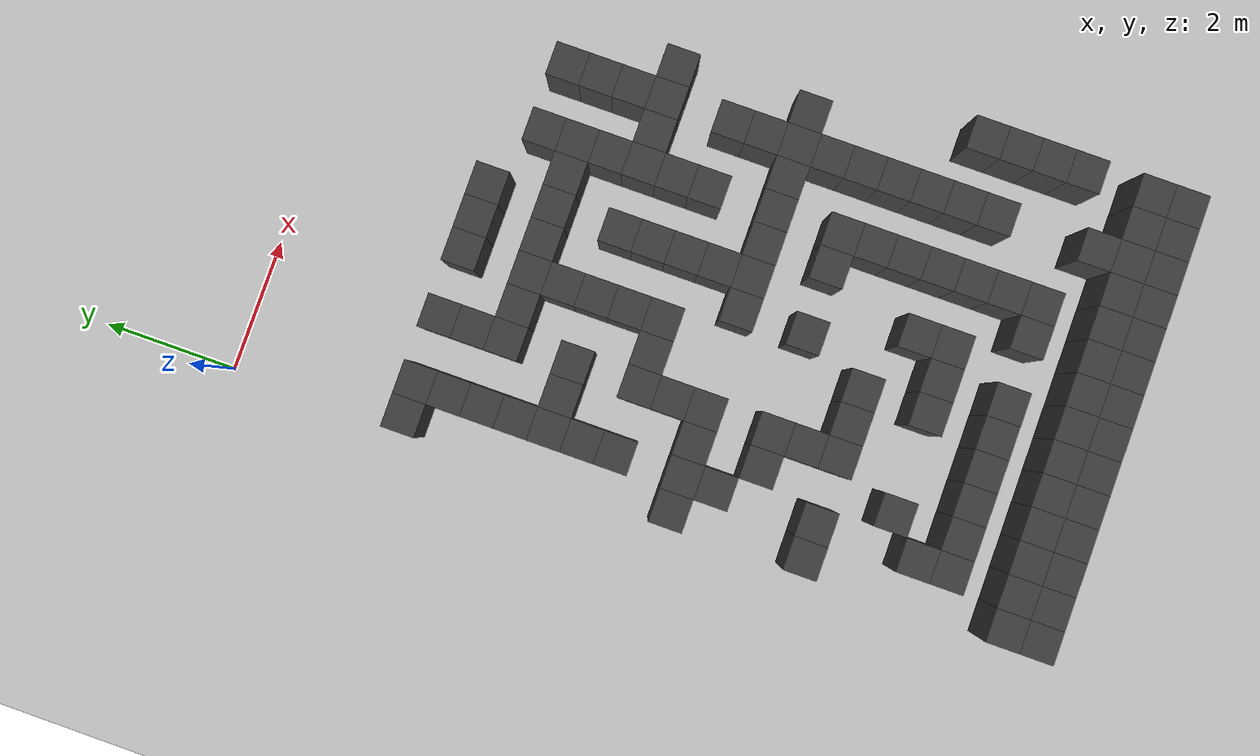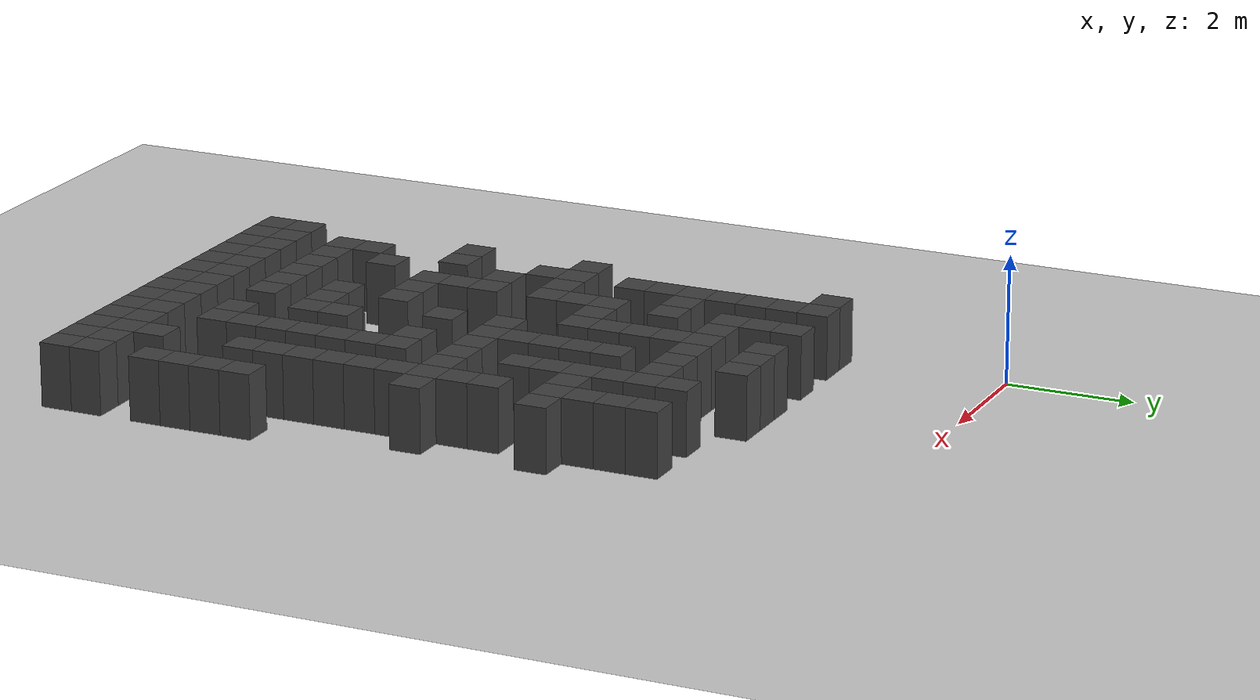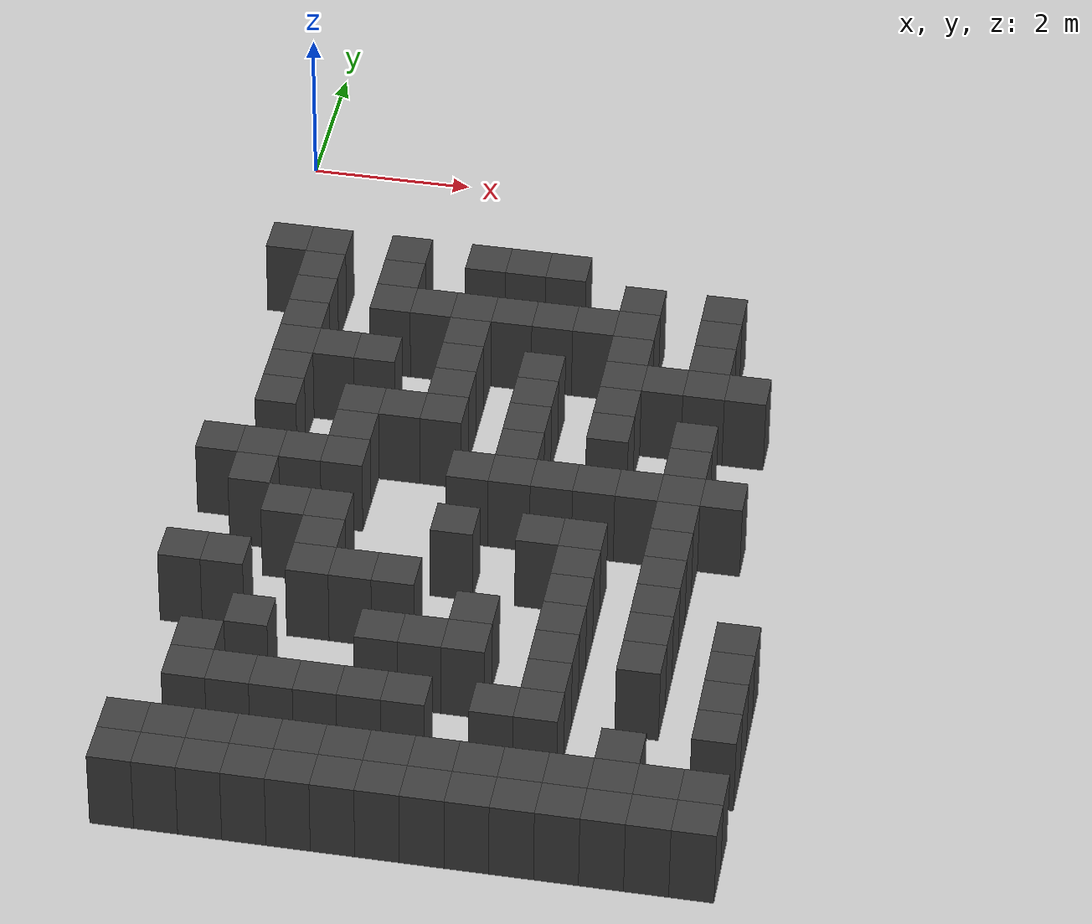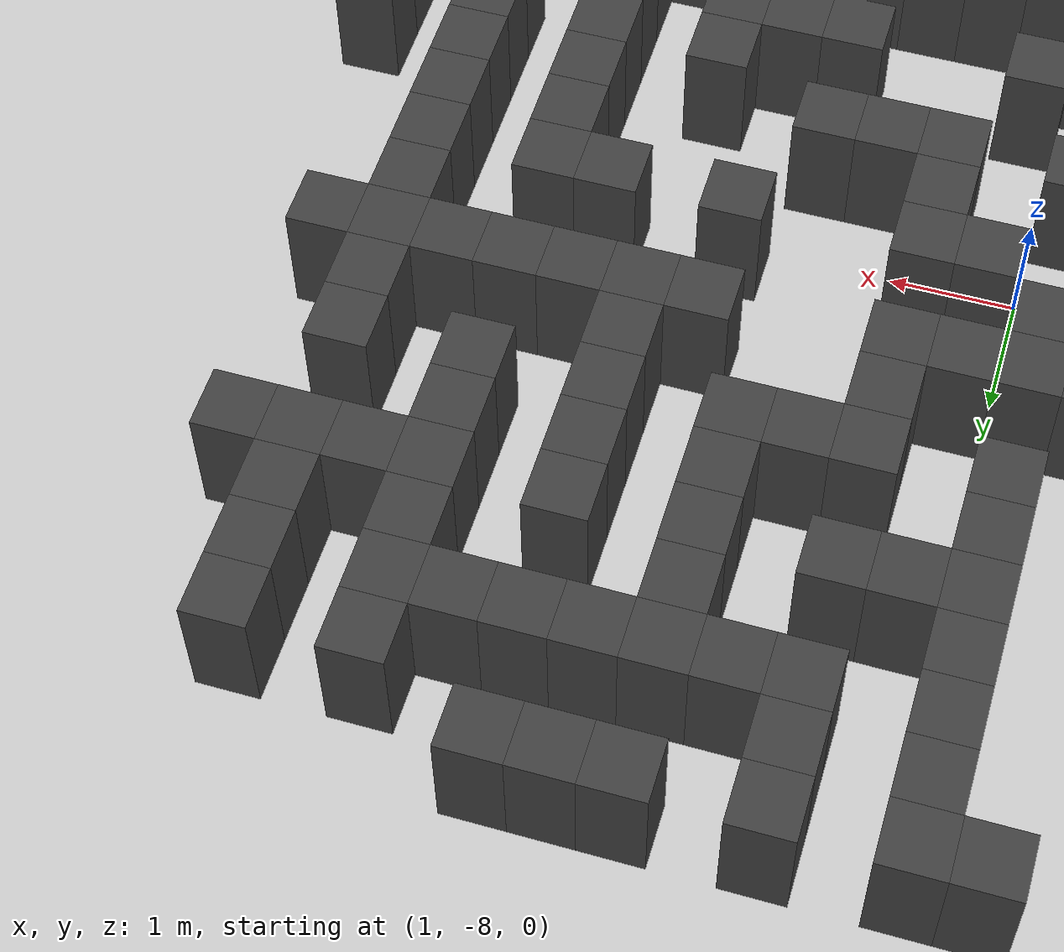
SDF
<sdf version="1.7">
 <world name="map_17503">
  <model name="ground_plane">
   <static>true</static>
   <link name="link">
    <collision name="collision">
     <geometry><plane><normal>0 0 1</normal><size>200 200</size></plane></geometry>
    </collision>
    <visual name="visual">
     <geometry><plane><normal>0 0 1</normal><size>200 200</size></plane></geometry>
     <material><ambient>0.8 0.8 0.8 1</ambient><diffuse>0.8 0.8 0.8 1</diffuse></material>
    </visual>
   </link>
  </model>
  <model name="maze_environment">
   <static>true</static>
   <link name="wall_758">
    <pose>0.250 -2.750 0.500 0 0 0</pose>
    <collision name="col"><geometry><box><size>0.5 0.5 1.0</size></box></geometry></collision>
    <visual name="vis">
     <geometry><box><size>0.5 0.5 1.0</size></box></geometry>
     <material><ambient>0.15 0.15 0.15 1</ambient><diffuse>0.25 0.25 0.25 1</diffuse></material>
    </visual>
   </link>
   <link name="wall_759">
    <pose>0.750 -2.750 0.500 0 0 0</pose>
    <collision name="col"><geometry><box><size>0.5 0.5 1.0</size></box></geometry></collision>
    <visual name="vis">
     <geometry><box><size>0.5 0.5 1.0</size></box></geometry>
     <material><ambient>0.15 0.15 0.15 1</ambient><diffuse>0.25 0.25 0.25 1</diffuse></material>
    </visual>
   </link>
   <link name="wall_760">
    <pose>1.750 -2.750 0.500 0 0 0</pose>
    <collision name="col"><geometry><box><size>0.5 0.5 1.0</size></box></geometry></collision>
    <visual name="vis">
     <geometry><box><size>0.5 0.5 1.0</size></box></geometry>
     <material><ambient>0.15 0.15 0.15 1</ambient><diffuse>0.25 0.25 0.25 1</diffuse></material>
    </visual>
   </link>
   <link name="wall_761">
    <pose>2.750 -2.750 0.500 0 0 0</pose>
    <collision name="col"><geometry><box><size>0.5 0.5 1.0</size></box></geometry></collision>
    <visual name="vis">
     <geometry><box><size>0.5 0.5 1.0</size></box></geometry>
     <material><ambient>0.15 0.15 0.15 1</ambient><diffuse>0.25 0.25 0.25 1</diffuse></material>
    </visual>
   </link>
   <link name="wall_762">
    <pose>3.250 -2.750 0.500 0 0 0</pose>
    <collision name="col"><geometry><box><size>0.5 0.5 1.0</size></box></geometry></collision>
    <visual name="vis">
     <geometry><box><size>0.5 0.5 1.0</size></box></geometry>
     <material><ambient>0.15 0.15 0.15 1</ambient><diffuse>0.25 0.25 0.25 1</diffuse></material>
    </visual>
   </link>
   <link name="wall_763">
    <pose>3.750 -2.750 0.500 0 0 0</pose>
    <collision name="col"><geometry><box><size>0.5 0.5 1.0</size></box></geometry></collision>
    <visual name="vis">
     <geometry><box><size>0.5 0.5 1.0</size></box></geometry>
     <material><ambient>0.15 0.15 0.15 1</ambient><diffuse>0.25 0.25 0.25 1</diffuse></material>
    </visual>
   </link>
   <link name="wall_782">
    <pose>0.750 -3.250 0.500 0 0 0</pose>
    <collision name="col"><geometry><box><size>0.5 0.5 1.0</size></box></geometry></collision>
    <visual name="vis">
     <geometry><box><size>0.5 0.5 1.0</size></box></geometry>
     <material><ambient>0.15 0.15 0.15 1</ambient><diffuse>0.25 0.25 0.25 1</diffuse></material>
    </visual>
   </link>
   <link name="wall_783">
    <pose>1.750 -3.250 0.500 0 0 0</pose>
    <collision name="col"><geometry><box><size>0.5 0.5 1.0</size></box></geometry></collision>
    <visual name="vis">
     <geometry><box><size>0.5 0.5 1.0</size></box></geometry>
     <material><ambient>0.15 0.15 0.15 1</ambient><diffuse>0.25 0.25 0.25 1</diffuse></material>
    </visual>
   </link>
   <link name="wall_784">
    <pose>4.750 -3.250 0.500 0 0 0</pose>
    <collision name="col"><geometry><box><size>0.5 0.5 1.0</size></box></geometry></collision>
    <visual name="vis">
     <geometry><box><size>0.5 0.5 1.0</size></box></geometry>
     <material><ambient>0.15 0.15 0.15 1</ambient><diffuse>0.25 0.25 0.25 1</diffuse></material>
    </visual>
   </link>
   <link name="wall_785">
    <pose>5.750 -3.250 0.500 0 0 0</pose>
    <collision name="col"><geometry><box><size>0.5 0.5 1.0</size></box></geometry></collision>
    <visual name="vis">
     <geometry><box><size>0.5 0.5 1.0</size></box></geometry>
     <material><ambient>0.15 0.15 0.15 1</ambient><diffuse>0.25 0.25 0.25 1</diffuse></material>
    </visual>
   </link>
   <link name="wall_806">
    <pose>0.750 -3.750 0.500 0 0 0</pose>
    <collision name="col"><geometry><box><size>0.5 0.5 1.0</size></box></geometry></collision>
    <visual name="vis">
     <geometry><box><size>0.5 0.5 1.0</size></box></geometry>
     <material><ambient>0.15 0.15 0.15 1</ambient><diffuse>0.25 0.25 0.25 1</diffuse></material>
    </visual>
   </link>
   <link name="wall_807">
    <pose>1.750 -3.750 0.500 0 0 0</pose>
    <collision name="col"><geometry><box><size>0.5 0.5 1.0</size></box></geometry></collision>
    <visual name="vis">
     <geometry><box><size>0.5 0.5 1.0</size></box></geometry>
     <material><ambient>0.15 0.15 0.15 1</ambient><diffuse>0.25 0.25 0.25 1</diffuse></material>
    </visual>
   </link>
   <link name="wall_808">
    <pose>2.250 -3.750 0.500 0 0 0</pose>
    <collision name="col"><geometry><box><size>0.5 0.5 1.0</size></box></geometry></collision>
    <visual name="vis">
     <geometry><box><size>0.5 0.5 1.0</size></box></geometry>
     <material><ambient>0.15 0.15 0.15 1</ambient><diffuse>0.25 0.25 0.25 1</diffuse></material>
    </visual>
   </link>
   <link name="wall_809">
    <pose>2.750 -3.750 0.500 0 0 0</pose>
    <collision name="col"><geometry><box><size>0.5 0.5 1.0</size></box></geometry></collision>
    <visual name="vis">
     <geometry><box><size>0.5 0.5 1.0</size></box></geometry>
     <material><ambient>0.15 0.15 0.15 1</ambient><diffuse>0.25 0.25 0.25 1</diffuse></material>
    </visual>
   </link>
   <link name="wall_810">
    <pose>3.250 -3.750 0.500 0 0 0</pose>
    <collision name="col"><geometry><box><size>0.5 0.5 1.0</size></box></geometry></collision>
    <visual name="vis">
     <geometry><box><size>0.5 0.5 1.0</size></box></geometry>
     <material><ambient>0.15 0.15 0.15 1</ambient><diffuse>0.25 0.25 0.25 1</diffuse></material>
    </visual>
   </link>
   <link name="wall_811">
    <pose>3.750 -3.750 0.500 0 0 0</pose>
    <collision name="col"><geometry><box><size>0.5 0.5 1.0</size></box></geometry></collision>
    <visual name="vis">
     <geometry><box><size>0.5 0.5 1.0</size></box></geometry>
     <material><ambient>0.15 0.15 0.15 1</ambient><diffuse>0.25 0.25 0.25 1</diffuse></material>
    </visual>
   </link>
   <link name="wall_812">
    <pose>4.250 -3.750 0.500 0 0 0</pose>
    <collision name="col"><geometry><box><size>0.5 0.5 1.0</size></box></geometry></collision>
    <visual name="vis">
     <geometry><box><size>0.5 0.5 1.0</size></box></geometry>
     <material><ambient>0.15 0.15 0.15 1</ambient><diffuse>0.25 0.25 0.25 1</diffuse></material>
    </visual>
   </link>
   <link name="wall_813">
    <pose>4.750 -3.750 0.500 0 0 0</pose>
    <collision name="col"><geometry><box><size>0.5 0.5 1.0</size></box></geometry></collision>
    <visual name="vis">
     <geometry><box><size>0.5 0.5 1.0</size></box></geometry>
     <material><ambient>0.15 0.15 0.15 1</ambient><diffuse>0.25 0.25 0.25 1</diffuse></material>
    </visual>
   </link>
   <link name="wall_814">
    <pose>5.750 -3.750 0.500 0 0 0</pose>
    <collision name="col"><geometry><box><size>0.5 0.5 1.0</size></box></geometry></collision>
    <visual name="vis">
     <geometry><box><size>0.5 0.5 1.0</size></box></geometry>
     <material><ambient>0.15 0.15 0.15 1</ambient><diffuse>0.25 0.25 0.25 1</diffuse></material>
    </visual>
   </link>
   <link name="wall_833">
    <pose>0.750 -4.250 0.500 0 0 0</pose>
    <collision name="col"><geometry><box><size>0.5 0.5 1.0</size></box></geometry></collision>
    <visual name="vis">
     <geometry><box><size>0.5 0.5 1.0</size></box></geometry>
     <material><ambient>0.15 0.15 0.15 1</ambient><diffuse>0.25 0.25 0.25 1</diffuse></material>
    </visual>
   </link>
   <link name="wall_834">
    <pose>2.750 -4.250 0.500 0 0 0</pose>
    <collision name="col"><geometry><box><size>0.5 0.5 1.0</size></box></geometry></collision>
    <visual name="vis">
     <geometry><box><size>0.5 0.5 1.0</size></box></geometry>
     <material><ambient>0.15 0.15 0.15 1</ambient><diffuse>0.25 0.25 0.25 1</diffuse></material>
    </visual>
   </link>
   <link name="wall_835">
    <pose>4.750 -4.250 0.500 0 0 0</pose>
    <collision name="col"><geometry><box><size>0.5 0.5 1.0</size></box></geometry></collision>
    <visual name="vis">
     <geometry><box><size>0.5 0.5 1.0</size></box></geometry>
     <material><ambient>0.15 0.15 0.15 1</ambient><diffuse>0.25 0.25 0.25 1</diffuse></material>
    </visual>
   </link>
   <link name="wall_836">
    <pose>5.750 -4.250 0.500 0 0 0</pose>
    <collision name="col"><geometry><box><size>0.5 0.5 1.0</size></box></geometry></collision>
    <visual name="vis">
     <geometry><box><size>0.5 0.5 1.0</size></box></geometry>
     <material><ambient>0.15 0.15 0.15 1</ambient><diffuse>0.25 0.25 0.25 1</diffuse></material>
    </visual>
   </link>
   <link name="wall_860">
    <pose>0.750 -4.750 0.500 0 0 0</pose>
    <collision name="col"><geometry><box><size>0.5 0.5 1.0</size></box></geometry></collision>
    <visual name="vis">
     <geometry><box><size>0.5 0.5 1.0</size></box></geometry>
     <material><ambient>0.15 0.15 0.15 1</ambient><diffuse>0.25 0.25 0.25 1</diffuse></material>
    </visual>
   </link>
   <link name="wall_861">
    <pose>1.250 -4.750 0.500 0 0 0</pose>
    <collision name="col"><geometry><box><size>0.5 0.5 1.0</size></box></geometry></collision>
    <visual name="vis">
     <geometry><box><size>0.5 0.5 1.0</size></box></geometry>
     <material><ambient>0.15 0.15 0.15 1</ambient><diffuse>0.25 0.25 0.25 1</diffuse></material>
    </visual>
   </link>
   <link name="wall_862">
    <pose>1.750 -4.750 0.500 0 0 0</pose>
    <collision name="col"><geometry><box><size>0.5 0.5 1.0</size></box></geometry></collision>
    <visual name="vis">
     <geometry><box><size>0.5 0.5 1.0</size></box></geometry>
     <material><ambient>0.15 0.15 0.15 1</ambient><diffuse>0.25 0.25 0.25 1</diffuse></material>
    </visual>
   </link>
   <link name="wall_863">
    <pose>2.750 -4.750 0.500 0 0 0</pose>
    <collision name="col"><geometry><box><size>0.5 0.5 1.0</size></box></geometry></collision>
    <visual name="vis">
     <geometry><box><size>0.5 0.5 1.0</size></box></geometry>
     <material><ambient>0.15 0.15 0.15 1</ambient><diffuse>0.25 0.25 0.25 1</diffuse></material>
    </visual>
   </link>
   <link name="wall_864">
    <pose>3.750 -4.750 0.500 0 0 0</pose>
    <collision name="col"><geometry><box><size>0.5 0.5 1.0</size></box></geometry></collision>
    <visual name="vis">
     <geometry><box><size>0.5 0.5 1.0</size></box></geometry>
     <material><ambient>0.15 0.15 0.15 1</ambient><diffuse>0.25 0.25 0.25 1</diffuse></material>
    </visual>
   </link>
   <link name="wall_865">
    <pose>4.750 -4.750 0.500 0 0 0</pose>
    <collision name="col"><geometry><box><size>0.5 0.5 1.0</size></box></geometry></collision>
    <visual name="vis">
     <geometry><box><size>0.5 0.5 1.0</size></box></geometry>
     <material><ambient>0.15 0.15 0.15 1</ambient><diffuse>0.25 0.25 0.25 1</diffuse></material>
    </visual>
   </link>
   <link name="wall_866">
    <pose>5.250 -4.750 0.500 0 0 0</pose>
    <collision name="col"><geometry><box><size>0.5 0.5 1.0</size></box></geometry></collision>
    <visual name="vis">
     <geometry><box><size>0.5 0.5 1.0</size></box></geometry>
     <material><ambient>0.15 0.15 0.15 1</ambient><diffuse>0.25 0.25 0.25 1</diffuse></material>
    </visual>
   </link>
   <link name="wall_867">
    <pose>5.750 -4.750 0.500 0 0 0</pose>
    <collision name="col"><geometry><box><size>0.5 0.5 1.0</size></box></geometry></collision>
    <visual name="vis">
     <geometry><box><size>0.5 0.5 1.0</size></box></geometry>
     <material><ambient>0.15 0.15 0.15 1</ambient><diffuse>0.25 0.25 0.25 1</diffuse></material>
    </visual>
   </link>
   <link name="wall_868">
    <pose>6.250 -4.750 0.500 0 0 0</pose>
    <collision name="col"><geometry><box><size>0.5 0.5 1.0</size></box></geometry></collision>
    <visual name="vis">
     <geometry><box><size>0.5 0.5 1.0</size></box></geometry>
     <material><ambient>0.15 0.15 0.15 1</ambient><diffuse>0.25 0.25 0.25 1</diffuse></material>
    </visual>
   </link>
   <link name="wall_885">
    <pose>0.750 -5.250 0.500 0 0 0</pose>
    <collision name="col"><geometry><box><size>0.5 0.5 1.0</size></box></geometry></collision>
    <visual name="vis">
     <geometry><box><size>0.5 0.5 1.0</size></box></geometry>
     <material><ambient>0.15 0.15 0.15 1</ambient><diffuse>0.25 0.25 0.25 1</diffuse></material>
    </visual>
   </link>
   <link name="wall_886">
    <pose>2.750 -5.250 0.500 0 0 0</pose>
    <collision name="col"><geometry><box><size>0.5 0.5 1.0</size></box></geometry></collision>
    <visual name="vis">
     <geometry><box><size>0.5 0.5 1.0</size></box></geometry>
     <material><ambient>0.15 0.15 0.15 1</ambient><diffuse>0.25 0.25 0.25 1</diffuse></material>
    </visual>
   </link>
   <link name="wall_887">
    <pose>3.750 -5.250 0.500 0 0 0</pose>
    <collision name="col"><geometry><box><size>0.5 0.5 1.0</size></box></geometry></collision>
    <visual name="vis">
     <geometry><box><size>0.5 0.5 1.0</size></box></geometry>
     <material><ambient>0.15 0.15 0.15 1</ambient><diffuse>0.25 0.25 0.25 1</diffuse></material>
    </visual>
   </link>
   <link name="wall_888">
    <pose>4.750 -5.250 0.500 0 0 0</pose>
    <collision name="col"><geometry><box><size>0.5 0.5 1.0</size></box></geometry></collision>
    <visual name="vis">
     <geometry><box><size>0.5 0.5 1.0</size></box></geometry>
     <material><ambient>0.15 0.15 0.15 1</ambient><diffuse>0.25 0.25 0.25 1</diffuse></material>
    </visual>
   </link>
   <link name="wall_907">
    <pose>0.750 -5.750 0.500 0 0 0</pose>
    <collision name="col"><geometry><box><size>0.5 0.5 1.0</size></box></geometry></collision>
    <visual name="vis">
     <geometry><box><size>0.5 0.5 1.0</size></box></geometry>
     <material><ambient>0.15 0.15 0.15 1</ambient><diffuse>0.25 0.25 0.25 1</diffuse></material>
    </visual>
   </link>
   <link name="wall_908">
    <pose>1.750 -5.750 0.500 0 0 0</pose>
    <collision name="col"><geometry><box><size>0.5 0.5 1.0</size></box></geometry></collision>
    <visual name="vis">
     <geometry><box><size>0.5 0.5 1.0</size></box></geometry>
     <material><ambient>0.15 0.15 0.15 1</ambient><diffuse>0.25 0.25 0.25 1</diffuse></material>
    </visual>
   </link>
   <link name="wall_909">
    <pose>2.250 -5.750 0.500 0 0 0</pose>
    <collision name="col"><geometry><box><size>0.5 0.5 1.0</size></box></geometry></collision>
    <visual name="vis">
     <geometry><box><size>0.5 0.5 1.0</size></box></geometry>
     <material><ambient>0.15 0.15 0.15 1</ambient><diffuse>0.25 0.25 0.25 1</diffuse></material>
    </visual>
   </link>
   <link name="wall_910">
    <pose>2.750 -5.750 0.500 0 0 0</pose>
    <collision name="col"><geometry><box><size>0.5 0.5 1.0</size></box></geometry></collision>
    <visual name="vis">
     <geometry><box><size>0.5 0.5 1.0</size></box></geometry>
     <material><ambient>0.15 0.15 0.15 1</ambient><diffuse>0.25 0.25 0.25 1</diffuse></material>
    </visual>
   </link>
   <link name="wall_911">
    <pose>3.750 -5.750 0.500 0 0 0</pose>
    <collision name="col"><geometry><box><size>0.5 0.5 1.0</size></box></geometry></collision>
    <visual name="vis">
     <geometry><box><size>0.5 0.5 1.0</size></box></geometry>
     <material><ambient>0.15 0.15 0.15 1</ambient><diffuse>0.25 0.25 0.25 1</diffuse></material>
    </visual>
   </link>
   <link name="wall_912">
    <pose>4.750 -5.750 0.500 0 0 0</pose>
    <collision name="col"><geometry><box><size>0.5 0.5 1.0</size></box></geometry></collision>
    <visual name="vis">
     <geometry><box><size>0.5 0.5 1.0</size></box></geometry>
     <material><ambient>0.15 0.15 0.15 1</ambient><diffuse>0.25 0.25 0.25 1</diffuse></material>
    </visual>
   </link>
   <link name="wall_913">
    <pose>5.750 -5.750 0.500 0 0 0</pose>
    <collision name="col"><geometry><box><size>0.5 0.5 1.0</size></box></geometry></collision>
    <visual name="vis">
     <geometry><box><size>0.5 0.5 1.0</size></box></geometry>
     <material><ambient>0.15 0.15 0.15 1</ambient><diffuse>0.25 0.25 0.25 1</diffuse></material>
    </visual>
   </link>
   <link name="wall_930">
    <pose>1.750 -6.250 0.500 0 0 0</pose>
    <collision name="col"><geometry><box><size>0.5 0.5 1.0</size></box></geometry></collision>
    <visual name="vis">
     <geometry><box><size>0.5 0.5 1.0</size></box></geometry>
     <material><ambient>0.15 0.15 0.15 1</ambient><diffuse>0.25 0.25 0.25 1</diffuse></material>
    </visual>
   </link>
   <link name="wall_931">
    <pose>3.750 -6.250 0.500 0 0 0</pose>
    <collision name="col"><geometry><box><size>0.5 0.5 1.0</size></box></geometry></collision>
    <visual name="vis">
     <geometry><box><size>0.5 0.5 1.0</size></box></geometry>
     <material><ambient>0.15 0.15 0.15 1</ambient><diffuse>0.25 0.25 0.25 1</diffuse></material>
    </visual>
   </link>
   <link name="wall_932">
    <pose>5.750 -6.250 0.500 0 0 0</pose>
    <collision name="col"><geometry><box><size>0.5 0.5 1.0</size></box></geometry></collision>
    <visual name="vis">
     <geometry><box><size>0.5 0.5 1.0</size></box></geometry>
     <material><ambient>0.15 0.15 0.15 1</ambient><diffuse>0.25 0.25 0.25 1</diffuse></material>
    </visual>
   </link>
   <link name="wall_952">
    <pose>0.250 -6.750 0.500 0 0 0</pose>
    <collision name="col"><geometry><box><size>0.5 0.5 1.0</size></box></geometry></collision>
    <visual name="vis">
     <geometry><box><size>0.5 0.5 1.0</size></box></geometry>
     <material><ambient>0.15 0.15 0.15 1</ambient><diffuse>0.25 0.25 0.25 1</diffuse></material>
    </visual>
   </link>
   <link name="wall_953">
    <pose>0.750 -6.750 0.500 0 0 0</pose>
    <collision name="col"><geometry><box><size>0.5 0.5 1.0</size></box></geometry></collision>
    <visual name="vis">
     <geometry><box><size>0.5 0.5 1.0</size></box></geometry>
     <material><ambient>0.15 0.15 0.15 1</ambient><diffuse>0.25 0.25 0.25 1</diffuse></material>
    </visual>
   </link>
   <link name="wall_954">
    <pose>1.250 -6.750 0.500 0 0 0</pose>
    <collision name="col"><geometry><box><size>0.5 0.5 1.0</size></box></geometry></collision>
    <visual name="vis">
     <geometry><box><size>0.5 0.5 1.0</size></box></geometry>
     <material><ambient>0.15 0.15 0.15 1</ambient><diffuse>0.25 0.25 0.25 1</diffuse></material>
    </visual>
   </link>
   <link name="wall_955">
    <pose>1.750 -6.750 0.500 0 0 0</pose>
    <collision name="col"><geometry><box><size>0.5 0.5 1.0</size></box></geometry></collision>
    <visual name="vis">
     <geometry><box><size>0.5 0.5 1.0</size></box></geometry>
     <material><ambient>0.15 0.15 0.15 1</ambient><diffuse>0.25 0.25 0.25 1</diffuse></material>
    </visual>
   </link>
   <link name="wall_956">
    <pose>3.250 -6.750 0.500 0 0 0</pose>
    <collision name="col"><geometry><box><size>0.5 0.5 1.0</size></box></geometry></collision>
    <visual name="vis">
     <geometry><box><size>0.5 0.5 1.0</size></box></geometry>
     <material><ambient>0.15 0.15 0.15 1</ambient><diffuse>0.25 0.25 0.25 1</diffuse></material>
    </visual>
   </link>
   <link name="wall_957">
    <pose>3.750 -6.750 0.500 0 0 0</pose>
    <collision name="col"><geometry><box><size>0.5 0.5 1.0</size></box></geometry></collision>
    <visual name="vis">
     <geometry><box><size>0.5 0.5 1.0</size></box></geometry>
     <material><ambient>0.15 0.15 0.15 1</ambient><diffuse>0.25 0.25 0.25 1</diffuse></material>
    </visual>
   </link>
   <link name="wall_958">
    <pose>4.250 -6.750 0.500 0 0 0</pose>
    <collision name="col"><geometry><box><size>0.5 0.5 1.0</size></box></geometry></collision>
    <visual name="vis">
     <geometry><box><size>0.5 0.5 1.0</size></box></geometry>
     <material><ambient>0.15 0.15 0.15 1</ambient><diffuse>0.25 0.25 0.25 1</diffuse></material>
    </visual>
   </link>
   <link name="wall_959">
    <pose>4.750 -6.750 0.500 0 0 0</pose>
    <collision name="col"><geometry><box><size>0.5 0.5 1.0</size></box></geometry></collision>
    <visual name="vis">
     <geometry><box><size>0.5 0.5 1.0</size></box></geometry>
     <material><ambient>0.15 0.15 0.15 1</ambient><diffuse>0.25 0.25 0.25 1</diffuse></material>
    </visual>
   </link>
   <link name="wall_960">
    <pose>5.250 -6.750 0.500 0 0 0</pose>
    <collision name="col"><geometry><box><size>0.5 0.5 1.0</size></box></geometry></collision>
    <visual name="vis">
     <geometry><box><size>0.5 0.5 1.0</size></box></geometry>
     <material><ambient>0.15 0.15 0.15 1</ambient><diffuse>0.25 0.25 0.25 1</diffuse></material>
    </visual>
   </link>
   <link name="wall_961">
    <pose>5.750 -6.750 0.500 0 0 0</pose>
    <collision name="col"><geometry><box><size>0.5 0.5 1.0</size></box></geometry></collision>
    <visual name="vis">
     <geometry><box><size>0.5 0.5 1.0</size></box></geometry>
     <material><ambient>0.15 0.15 0.15 1</ambient><diffuse>0.25 0.25 0.25 1</diffuse></material>
    </visual>
   </link>
   <link name="wall_962">
    <pose>6.250 -6.750 0.500 0 0 0</pose>
    <collision name="col"><geometry><box><size>0.5 0.5 1.0</size></box></geometry></collision>
    <visual name="vis">
     <geometry><box><size>0.5 0.5 1.0</size></box></geometry>
     <material><ambient>0.15 0.15 0.15 1</ambient><diffuse>0.25 0.25 0.25 1</diffuse></material>
    </visual>
   </link>
   <link name="wall_980">
    <pose>0.750 -7.250 0.500 0 0 0</pose>
    <collision name="col"><geometry><box><size>0.5 0.5 1.0</size></box></geometry></collision>
    <visual name="vis">
     <geometry><box><size>0.5 0.5 1.0</size></box></geometry>
     <material><ambient>0.15 0.15 0.15 1</ambient><diffuse>0.25 0.25 0.25 1</diffuse></material>
    </visual>
   </link>
   <link name="wall_981">
    <pose>5.750 -7.250 0.500 0 0 0</pose>
    <collision name="col"><geometry><box><size>0.5 0.5 1.0</size></box></geometry></collision>
    <visual name="vis">
     <geometry><box><size>0.5 0.5 1.0</size></box></geometry>
     <material><ambient>0.15 0.15 0.15 1</ambient><diffuse>0.25 0.25 0.25 1</diffuse></material>
    </visual>
   </link>
   <link name="wall_1004">
    <pose>1.250 -7.750 0.500 0 0 0</pose>
    <collision name="col"><geometry><box><size>0.5 0.5 1.0</size></box></geometry></collision>
    <visual name="vis">
     <geometry><box><size>0.5 0.5 1.0</size></box></geometry>
     <material><ambient>0.15 0.15 0.15 1</ambient><diffuse>0.25 0.25 0.25 1</diffuse></material>
    </visual>
   </link>
   <link name="wall_1005">
    <pose>1.750 -7.750 0.500 0 0 0</pose>
    <collision name="col"><geometry><box><size>0.5 0.5 1.0</size></box></geometry></collision>
    <visual name="vis">
     <geometry><box><size>0.5 0.5 1.0</size></box></geometry>
     <material><ambient>0.15 0.15 0.15 1</ambient><diffuse>0.25 0.25 0.25 1</diffuse></material>
    </visual>
   </link>
   <link name="wall_1006">
    <pose>3.250 -7.750 0.500 0 0 0</pose>
    <collision name="col"><geometry><box><size>0.5 0.5 1.0</size></box></geometry></collision>
    <visual name="vis">
     <geometry><box><size>0.5 0.5 1.0</size></box></geometry>
     <material><ambient>0.15 0.15 0.15 1</ambient><diffuse>0.25 0.25 0.25 1</diffuse></material>
    </visual>
   </link>
   <link name="wall_1007">
    <pose>4.250 -7.750 0.500 0 0 0</pose>
    <collision name="col"><geometry><box><size>0.5 0.5 1.0</size></box></geometry></collision>
    <visual name="vis">
     <geometry><box><size>0.5 0.5 1.0</size></box></geometry>
     <material><ambient>0.15 0.15 0.15 1</ambient><diffuse>0.25 0.25 0.25 1</diffuse></material>
    </visual>
   </link>
   <link name="wall_1008">
    <pose>4.750 -7.750 0.500 0 0 0</pose>
    <collision name="col"><geometry><box><size>0.5 0.5 1.0</size></box></geometry></collision>
    <visual name="vis">
     <geometry><box><size>0.5 0.5 1.0</size></box></geometry>
     <material><ambient>0.15 0.15 0.15 1</ambient><diffuse>0.25 0.25 0.25 1</diffuse></material>
    </visual>
   </link>
   <link name="wall_1009">
    <pose>5.750 -7.750 0.500 0 0 0</pose>
    <collision name="col"><geometry><box><size>0.5 0.5 1.0</size></box></geometry></collision>
    <visual name="vis">
     <geometry><box><size>0.5 0.5 1.0</size></box></geometry>
     <material><ambient>0.15 0.15 0.15 1</ambient><diffuse>0.25 0.25 0.25 1</diffuse></material>
    </visual>
   </link>
   <link name="wall_1028">
    <pose>1.750 -8.250 0.500 0 0 0</pose>
    <collision name="col"><geometry><box><size>0.5 0.5 1.0</size></box></geometry></collision>
    <visual name="vis">
     <geometry><box><size>0.5 0.5 1.0</size></box></geometry>
     <material><ambient>0.15 0.15 0.15 1</ambient><diffuse>0.25 0.25 0.25 1</diffuse></material>
    </visual>
   </link>
   <link name="wall_1029">
    <pose>4.750 -8.250 0.500 0 0 0</pose>
    <collision name="col"><geometry><box><size>0.5 0.5 1.0</size></box></geometry></collision>
    <visual name="vis">
     <geometry><box><size>0.5 0.5 1.0</size></box></geometry>
     <material><ambient>0.15 0.15 0.15 1</ambient><diffuse>0.25 0.25 0.25 1</diffuse></material>
    </visual>
   </link>
   <link name="wall_1030">
    <pose>5.750 -8.250 0.500 0 0 0</pose>
    <collision name="col"><geometry><box><size>0.5 0.5 1.0</size></box></geometry></collision>
    <visual name="vis">
     <geometry><box><size>0.5 0.5 1.0</size></box></geometry>
     <material><ambient>0.15 0.15 0.15 1</ambient><diffuse>0.25 0.25 0.25 1</diffuse></material>
    </visual>
   </link>
   <link name="wall_1052">
    <pose>0.250 -8.750 0.500 0 0 0</pose>
    <collision name="col"><geometry><box><size>0.5 0.5 1.0</size></box></geometry></collision>
    <visual name="vis">
     <geometry><box><size>0.5 0.5 1.0</size></box></geometry>
     <material><ambient>0.15 0.15 0.15 1</ambient><diffuse>0.25 0.25 0.25 1</diffuse></material>
    </visual>
   </link>
   <link name="wall_1053">
    <pose>0.750 -8.750 0.500 0 0 0</pose>
    <collision name="col"><geometry><box><size>0.5 0.5 1.0</size></box></geometry></collision>
    <visual name="vis">
     <geometry><box><size>0.5 0.5 1.0</size></box></geometry>
     <material><ambient>0.15 0.15 0.15 1</ambient><diffuse>0.25 0.25 0.25 1</diffuse></material>
    </visual>
   </link>
   <link name="wall_1054">
    <pose>1.750 -8.750 0.500 0 0 0</pose>
    <collision name="col"><geometry><box><size>0.5 0.5 1.0</size></box></geometry></collision>
    <visual name="vis">
     <geometry><box><size>0.5 0.5 1.0</size></box></geometry>
     <material><ambient>0.15 0.15 0.15 1</ambient><diffuse>0.25 0.25 0.25 1</diffuse></material>
    </visual>
   </link>
   <link name="wall_1055">
    <pose>2.250 -8.750 0.500 0 0 0</pose>
    <collision name="col"><geometry><box><size>0.5 0.5 1.0</size></box></geometry></collision>
    <visual name="vis">
     <geometry><box><size>0.5 0.5 1.0</size></box></geometry>
     <material><ambient>0.15 0.15 0.15 1</ambient><diffuse>0.25 0.25 0.25 1</diffuse></material>
    </visual>
   </link>
   <link name="wall_1056">
    <pose>2.750 -8.750 0.500 0 0 0</pose>
    <collision name="col"><geometry><box><size>0.5 0.5 1.0</size></box></geometry></collision>
    <visual name="vis">
     <geometry><box><size>0.5 0.5 1.0</size></box></geometry>
     <material><ambient>0.15 0.15 0.15 1</ambient><diffuse>0.25 0.25 0.25 1</diffuse></material>
    </visual>
   </link>
   <link name="wall_1057">
    <pose>4.750 -8.750 0.500 0 0 0</pose>
    <collision name="col"><geometry><box><size>0.5 0.5 1.0</size></box></geometry></collision>
    <visual name="vis">
     <geometry><box><size>0.5 0.5 1.0</size></box></geometry>
     <material><ambient>0.15 0.15 0.15 1</ambient><diffuse>0.25 0.25 0.25 1</diffuse></material>
    </visual>
   </link>
   <link name="wall_1058">
    <pose>5.750 -8.750 0.500 0 0 0</pose>
    <collision name="col"><geometry><box><size>0.5 0.5 1.0</size></box></geometry></collision>
    <visual name="vis">
     <geometry><box><size>0.5 0.5 1.0</size></box></geometry>
     <material><ambient>0.15 0.15 0.15 1</ambient><diffuse>0.25 0.25 0.25 1</diffuse></material>
    </visual>
   </link>
   <link name="wall_1076">
    <pose>3.750 -9.250 0.500 0 0 0</pose>
    <collision name="col"><geometry><box><size>0.5 0.5 1.0</size></box></geometry></collision>
    <visual name="vis">
     <geometry><box><size>0.5 0.5 1.0</size></box></geometry>
     <material><ambient>0.15 0.15 0.15 1</ambient><diffuse>0.25 0.25 0.25 1</diffuse></material>
    </visual>
   </link>
   <link name="wall_1077">
    <pose>4.750 -9.250 0.500 0 0 0</pose>
    <collision name="col"><geometry><box><size>0.5 0.5 1.0</size></box></geometry></collision>
    <visual name="vis">
     <geometry><box><size>0.5 0.5 1.0</size></box></geometry>
     <material><ambient>0.15 0.15 0.15 1</ambient><diffuse>0.25 0.25 0.25 1</diffuse></material>
    </visual>
   </link>
   <link name="wall_1078">
    <pose>5.750 -9.250 0.500 0 0 0</pose>
    <collision name="col"><geometry><box><size>0.5 0.5 1.0</size></box></geometry></collision>
    <visual name="vis">
     <geometry><box><size>0.5 0.5 1.0</size></box></geometry>
     <material><ambient>0.15 0.15 0.15 1</ambient><diffuse>0.25 0.25 0.25 1</diffuse></material>
    </visual>
   </link>
   <link name="wall_1079">
    <pose>6.750 -9.250 0.500 0 0 0</pose>
    <collision name="col"><geometry><box><size>0.5 0.5 1.0</size></box></geometry></collision>
    <visual name="vis">
     <geometry><box><size>0.5 0.5 1.0</size></box></geometry>
     <material><ambient>0.15 0.15 0.15 1</ambient><diffuse>0.25 0.25 0.25 1</diffuse></material>
    </visual>
   </link>
   <link name="wall_1101">
    <pose>1.250 -9.750 0.500 0 0 0</pose>
    <collision name="col"><geometry><box><size>0.5 0.5 1.0</size></box></geometry></collision>
    <visual name="vis">
     <geometry><box><size>0.5 0.5 1.0</size></box></geometry>
     <material><ambient>0.15 0.15 0.15 1</ambient><diffuse>0.25 0.25 0.25 1</diffuse></material>
    </visual>
   </link>
   <link name="wall_1102">
    <pose>2.750 -9.750 0.500 0 0 0</pose>
    <collision name="col"><geometry><box><size>0.5 0.5 1.0</size></box></geometry></collision>
    <visual name="vis">
     <geometry><box><size>0.5 0.5 1.0</size></box></geometry>
     <material><ambient>0.15 0.15 0.15 1</ambient><diffuse>0.25 0.25 0.25 1</diffuse></material>
    </visual>
   </link>
   <link name="wall_1103">
    <pose>3.250 -9.750 0.500 0 0 0</pose>
    <collision name="col"><geometry><box><size>0.5 0.5 1.0</size></box></geometry></collision>
    <visual name="vis">
     <geometry><box><size>0.5 0.5 1.0</size></box></geometry>
     <material><ambient>0.15 0.15 0.15 1</ambient><diffuse>0.25 0.25 0.25 1</diffuse></material>
    </visual>
   </link>
   <link name="wall_1104">
    <pose>3.750 -9.750 0.500 0 0 0</pose>
    <collision name="col"><geometry><box><size>0.5 0.5 1.0</size></box></geometry></collision>
    <visual name="vis">
     <geometry><box><size>0.5 0.5 1.0</size></box></geometry>
     <material><ambient>0.15 0.15 0.15 1</ambient><diffuse>0.25 0.25 0.25 1</diffuse></material>
    </visual>
   </link>
   <link name="wall_1105">
    <pose>4.750 -9.750 0.500 0 0 0</pose>
    <collision name="col"><geometry><box><size>0.5 0.5 1.0</size></box></geometry></collision>
    <visual name="vis">
     <geometry><box><size>0.5 0.5 1.0</size></box></geometry>
     <material><ambient>0.15 0.15 0.15 1</ambient><diffuse>0.25 0.25 0.25 1</diffuse></material>
    </visual>
   </link>
   <link name="wall_1106">
    <pose>5.750 -9.750 0.500 0 0 0</pose>
    <collision name="col"><geometry><box><size>0.5 0.5 1.0</size></box></geometry></collision>
    <visual name="vis">
     <geometry><box><size>0.5 0.5 1.0</size></box></geometry>
     <material><ambient>0.15 0.15 0.15 1</ambient><diffuse>0.25 0.25 0.25 1</diffuse></material>
    </visual>
   </link>
   <link name="wall_1107">
    <pose>6.750 -9.750 0.500 0 0 0</pose>
    <collision name="col"><geometry><box><size>0.5 0.5 1.0</size></box></geometry></collision>
    <visual name="vis">
     <geometry><box><size>0.5 0.5 1.0</size></box></geometry>
     <material><ambient>0.15 0.15 0.15 1</ambient><diffuse>0.25 0.25 0.25 1</diffuse></material>
    </visual>
   </link>
   <link name="wall_1125">
    <pose>0.750 -10.250 0.500 0 0 0</pose>
    <collision name="col"><geometry><box><size>0.5 0.5 1.0</size></box></geometry></collision>
    <visual name="vis">
     <geometry><box><size>0.5 0.5 1.0</size></box></geometry>
     <material><ambient>0.15 0.15 0.15 1</ambient><diffuse>0.25 0.25 0.25 1</diffuse></material>
    </visual>
   </link>
   <link name="wall_1126">
    <pose>4.750 -10.250 0.500 0 0 0</pose>
    <collision name="col"><geometry><box><size>0.5 0.5 1.0</size></box></geometry></collision>
    <visual name="vis">
     <geometry><box><size>0.5 0.5 1.0</size></box></geometry>
     <material><ambient>0.15 0.15 0.15 1</ambient><diffuse>0.25 0.25 0.25 1</diffuse></material>
    </visual>
   </link>
   <link name="wall_1127">
    <pose>6.750 -10.250 0.500 0 0 0</pose>
    <collision name="col"><geometry><box><size>0.5 0.5 1.0</size></box></geometry></collision>
    <visual name="vis">
     <geometry><box><size>0.5 0.5 1.0</size></box></geometry>
     <material><ambient>0.15 0.15 0.15 1</ambient><diffuse>0.25 0.25 0.25 1</diffuse></material>
    </visual>
   </link>
   <link name="wall_1146">
    <pose>0.750 -10.750 0.500 0 0 0</pose>
    <collision name="col"><geometry><box><size>0.5 0.5 1.0</size></box></geometry></collision>
    <visual name="vis">
     <geometry><box><size>0.5 0.5 1.0</size></box></geometry>
     <material><ambient>0.15 0.15 0.15 1</ambient><diffuse>0.25 0.25 0.25 1</diffuse></material>
    </visual>
   </link>
   <link name="wall_1147">
    <pose>1.250 -10.750 0.500 0 0 0</pose>
    <collision name="col"><geometry><box><size>0.5 0.5 1.0</size></box></geometry></collision>
    <visual name="vis">
     <geometry><box><size>0.5 0.5 1.0</size></box></geometry>
     <material><ambient>0.15 0.15 0.15 1</ambient><diffuse>0.25 0.25 0.25 1</diffuse></material>
    </visual>
   </link>
   <link name="wall_1148">
    <pose>1.750 -10.750 0.500 0 0 0</pose>
    <collision name="col"><geometry><box><size>0.5 0.5 1.0</size></box></geometry></collision>
    <visual name="vis">
     <geometry><box><size>0.5 0.5 1.0</size></box></geometry>
     <material><ambient>0.15 0.15 0.15 1</ambient><diffuse>0.25 0.25 0.25 1</diffuse></material>
    </visual>
   </link>
   <link name="wall_1149">
    <pose>2.250 -10.750 0.500 0 0 0</pose>
    <collision name="col"><geometry><box><size>0.5 0.5 1.0</size></box></geometry></collision>
    <visual name="vis">
     <geometry><box><size>0.5 0.5 1.0</size></box></geometry>
     <material><ambient>0.15 0.15 0.15 1</ambient><diffuse>0.25 0.25 0.25 1</diffuse></material>
    </visual>
   </link>
   <link name="wall_1150">
    <pose>2.750 -10.750 0.500 0 0 0</pose>
    <collision name="col"><geometry><box><size>0.5 0.5 1.0</size></box></geometry></collision>
    <visual name="vis">
     <geometry><box><size>0.5 0.5 1.0</size></box></geometry>
     <material><ambient>0.15 0.15 0.15 1</ambient><diffuse>0.25 0.25 0.25 1</diffuse></material>
    </visual>
   </link>
   <link name="wall_1151">
    <pose>3.250 -10.750 0.500 0 0 0</pose>
    <collision name="col"><geometry><box><size>0.5 0.5 1.0</size></box></geometry></collision>
    <visual name="vis">
     <geometry><box><size>0.5 0.5 1.0</size></box></geometry>
     <material><ambient>0.15 0.15 0.15 1</ambient><diffuse>0.25 0.25 0.25 1</diffuse></material>
    </visual>
   </link>
   <link name="wall_1152">
    <pose>4.250 -10.750 0.500 0 0 0</pose>
    <collision name="col"><geometry><box><size>0.5 0.5 1.0</size></box></geometry></collision>
    <visual name="vis">
     <geometry><box><size>0.5 0.5 1.0</size></box></geometry>
     <material><ambient>0.15 0.15 0.15 1</ambient><diffuse>0.25 0.25 0.25 1</diffuse></material>
    </visual>
   </link>
   <link name="wall_1153">
    <pose>4.750 -10.750 0.500 0 0 0</pose>
    <collision name="col"><geometry><box><size>0.5 0.5 1.0</size></box></geometry></collision>
    <visual name="vis">
     <geometry><box><size>0.5 0.5 1.0</size></box></geometry>
     <material><ambient>0.15 0.15 0.15 1</ambient><diffuse>0.25 0.25 0.25 1</diffuse></material>
    </visual>
   </link>
   <link name="wall_1154">
    <pose>6.750 -10.750 0.500 0 0 0</pose>
    <collision name="col"><geometry><box><size>0.5 0.5 1.0</size></box></geometry></collision>
    <visual name="vis">
     <geometry><box><size>0.5 0.5 1.0</size></box></geometry>
     <material><ambient>0.15 0.15 0.15 1</ambient><diffuse>0.25 0.25 0.25 1</diffuse></material>
    </visual>
   </link>
   <link name="wall_1169">
    <pose>5.750 -11.250 0.500 0 0 0</pose>
    <collision name="col"><geometry><box><size>0.5 0.5 1.0</size></box></geometry></collision>
    <visual name="vis">
     <geometry><box><size>0.5 0.5 1.0</size></box></geometry>
     <material><ambient>0.15 0.15 0.15 1</ambient><diffuse>0.25 0.25 0.25 1</diffuse></material>
    </visual>
   </link>
   <link name="wall_1197">
    <pose>0.250 -11.750 0.500 0 0 0</pose>
    <collision name="col"><geometry><box><size>0.5 0.5 1.0</size></box></geometry></collision>
    <visual name="vis">
     <geometry><box><size>0.5 0.5 1.0</size></box></geometry>
     <material><ambient>0.15 0.15 0.15 1</ambient><diffuse>0.25 0.25 0.25 1</diffuse></material>
    </visual>
   </link>
   <link name="wall_1198">
    <pose>0.750 -11.750 0.500 0 0 0</pose>
    <collision name="col"><geometry><box><size>0.5 0.5 1.0</size></box></geometry></collision>
    <visual name="vis">
     <geometry><box><size>0.5 0.5 1.0</size></box></geometry>
     <material><ambient>0.15 0.15 0.15 1</ambient><diffuse>0.25 0.25 0.25 1</diffuse></material>
    </visual>
   </link>
   <link name="wall_1199">
    <pose>1.250 -11.750 0.500 0 0 0</pose>
    <collision name="col"><geometry><box><size>0.5 0.5 1.0</size></box></geometry></collision>
    <visual name="vis">
     <geometry><box><size>0.5 0.5 1.0</size></box></geometry>
     <material><ambient>0.15 0.15 0.15 1</ambient><diffuse>0.25 0.25 0.25 1</diffuse></material>
    </visual>
   </link>
   <link name="wall_1200">
    <pose>1.750 -11.750 0.500 0 0 0</pose>
    <collision name="col"><geometry><box><size>0.5 0.5 1.0</size></box></geometry></collision>
    <visual name="vis">
     <geometry><box><size>0.5 0.5 1.0</size></box></geometry>
     <material><ambient>0.15 0.15 0.15 1</ambient><diffuse>0.25 0.25 0.25 1</diffuse></material>
    </visual>
   </link>
   <link name="wall_1201">
    <pose>2.250 -11.750 0.500 0 0 0</pose>
    <collision name="col"><geometry><box><size>0.5 0.5 1.0</size></box></geometry></collision>
    <visual name="vis">
     <geometry><box><size>0.5 0.5 1.0</size></box></geometry>
     <material><ambient>0.15 0.15 0.15 1</ambient><diffuse>0.25 0.25 0.25 1</diffuse></material>
    </visual>
   </link>
   <link name="wall_1202">
    <pose>2.750 -11.750 0.500 0 0 0</pose>
    <collision name="col"><geometry><box><size>0.5 0.5 1.0</size></box></geometry></collision>
    <visual name="vis">
     <geometry><box><size>0.5 0.5 1.0</size></box></geometry>
     <material><ambient>0.15 0.15 0.15 1</ambient><diffuse>0.25 0.25 0.25 1</diffuse></material>
    </visual>
   </link>
   <link name="wall_1203">
    <pose>3.250 -11.750 0.500 0 0 0</pose>
    <collision name="col"><geometry><box><size>0.5 0.5 1.0</size></box></geometry></collision>
    <visual name="vis">
     <geometry><box><size>0.5 0.5 1.0</size></box></geometry>
     <material><ambient>0.15 0.15 0.15 1</ambient><diffuse>0.25 0.25 0.25 1</diffuse></material>
    </visual>
   </link>
   <link name="wall_1204">
    <pose>3.750 -11.750 0.500 0 0 0</pose>
    <collision name="col"><geometry><box><size>0.5 0.5 1.0</size></box></geometry></collision>
    <visual name="vis">
     <geometry><box><size>0.5 0.5 1.0</size></box></geometry>
     <material><ambient>0.15 0.15 0.15 1</ambient><diffuse>0.25 0.25 0.25 1</diffuse></material>
    </visual>
   </link>
   <link name="wall_1205">
    <pose>4.250 -11.750 0.500 0 0 0</pose>
    <collision name="col"><geometry><box><size>0.5 0.5 1.0</size></box></geometry></collision>
    <visual name="vis">
     <geometry><box><size>0.5 0.5 1.0</size></box></geometry>
     <material><ambient>0.15 0.15 0.15 1</ambient><diffuse>0.25 0.25 0.25 1</diffuse></material>
    </visual>
   </link>
   <link name="wall_1206">
    <pose>4.750 -11.750 0.500 0 0 0</pose>
    <collision name="col"><geometry><box><size>0.5 0.5 1.0</size></box></geometry></collision>
    <visual name="vis">
     <geometry><box><size>0.5 0.5 1.0</size></box></geometry>
     <material><ambient>0.15 0.15 0.15 1</ambient><diffuse>0.25 0.25 0.25 1</diffuse></material>
    </visual>
   </link>
   <link name="wall_1207">
    <pose>5.250 -11.750 0.500 0 0 0</pose>
    <collision name="col"><geometry><box><size>0.5 0.5 1.0</size></box></geometry></collision>
    <visual name="vis">
     <geometry><box><size>0.5 0.5 1.0</size></box></geometry>
     <material><ambient>0.15 0.15 0.15 1</ambient><diffuse>0.25 0.25 0.25 1</diffuse></material>
    </visual>
   </link>
   <link name="wall_1208">
    <pose>5.750 -11.750 0.500 0 0 0</pose>
    <collision name="col"><geometry><box><size>0.5 0.5 1.0</size></box></geometry></collision>
    <visual name="vis">
     <geometry><box><size>0.5 0.5 1.0</size></box></geometry>
     <material><ambient>0.15 0.15 0.15 1</ambient><diffuse>0.25 0.25 0.25 1</diffuse></material>
    </visual>
   </link>
   <link name="wall_1209">
    <pose>6.250 -11.750 0.500 0 0 0</pose>
    <collision name="col"><geometry><box><size>0.5 0.5 1.0</size></box></geometry></collision>
    <visual name="vis">
     <geometry><box><size>0.5 0.5 1.0</size></box></geometry>
     <material><ambient>0.15 0.15 0.15 1</ambient><diffuse>0.25 0.25 0.25 1</diffuse></material>
    </visual>
   </link>
   <link name="wall_1210">
    <pose>6.750 -11.750 0.500 0 0 0</pose>
    <collision name="col"><geometry><box><size>0.5 0.5 1.0</size></box></geometry></collision>
    <visual name="vis">
     <geometry><box><size>0.5 0.5 1.0</size></box></geometry>
     <material><ambient>0.15 0.15 0.15 1</ambient><diffuse>0.25 0.25 0.25 1</diffuse></material>
    </visual>
   </link>
   <link name="wall_1245">
    <pose>0.250 -12.250 0.500 0 0 0</pose>
    <collision name="col"><geometry><box><size>0.5 0.5 1.0</size></box></geometry></collision>
    <visual name="vis">
     <geometry><box><size>0.5 0.5 1.0</size></box></geometry>
     <material><ambient>0.15 0.15 0.15 1</ambient><diffuse>0.25 0.25 0.25 1</diffuse></material>
    </visual>
   </link>
   <link name="wall_1246">
    <pose>0.750 -12.250 0.500 0 0 0</pose>
    <collision name="col"><geometry><box><size>0.5 0.5 1.0</size></box></geometry></collision>
    <visual name="vis">
     <geometry><box><size>0.5 0.5 1.0</size></box></geometry>
     <material><ambient>0.15 0.15 0.15 1</ambient><diffuse>0.25 0.25 0.25 1</diffuse></material>
    </visual>
   </link>
   <link name="wall_1247">
    <pose>1.250 -12.250 0.500 0 0 0</pose>
    <collision name="col"><geometry><box><size>0.5 0.5 1.0</size></box></geometry></collision>
    <visual name="vis">
     <geometry><box><size>0.5 0.5 1.0</size></box></geometry>
     <material><ambient>0.15 0.15 0.15 1</ambient><diffuse>0.25 0.25 0.25 1</diffuse></material>
    </visual>
   </link>
   <link name="wall_1248">
    <pose>1.750 -12.250 0.500 0 0 0</pose>
    <collision name="col"><geometry><box><size>0.5 0.5 1.0</size></box></geometry></collision>
    <visual name="vis">
     <geometry><box><size>0.5 0.5 1.0</size></box></geometry>
     <material><ambient>0.15 0.15 0.15 1</ambient><diffuse>0.25 0.25 0.25 1</diffuse></material>
    </visual>
   </link>
   <link name="wall_1249">
    <pose>2.250 -12.250 0.500 0 0 0</pose>
    <collision name="col"><geometry><box><size>0.5 0.5 1.0</size></box></geometry></collision>
    <visual name="vis">
     <geometry><box><size>0.5 0.5 1.0</size></box></geometry>
     <material><ambient>0.15 0.15 0.15 1</ambient><diffuse>0.25 0.25 0.25 1</diffuse></material>
    </visual>
   </link>
   <link name="wall_1250">
    <pose>2.750 -12.250 0.500 0 0 0</pose>
    <collision name="col"><geometry><box><size>0.5 0.5 1.0</size></box></geometry></collision>
    <visual name="vis">
     <geometry><box><size>0.5 0.5 1.0</size></box></geometry>
     <material><ambient>0.15 0.15 0.15 1</ambient><diffuse>0.25 0.25 0.25 1</diffuse></material>
    </visual>
   </link>
   <link name="wall_1251">
    <pose>3.250 -12.250 0.500 0 0 0</pose>
    <collision name="col"><geometry><box><size>0.5 0.5 1.0</size></box></geometry></collision>
    <visual name="vis">
     <geometry><box><size>0.5 0.5 1.0</size></box></geometry>
     <material><ambient>0.15 0.15 0.15 1</ambient><diffuse>0.25 0.25 0.25 1</diffuse></material>
    </visual>
   </link>
   <link name="wall_1252">
    <pose>3.750 -12.250 0.500 0 0 0</pose>
    <collision name="col"><geometry><box><size>0.5 0.5 1.0</size></box></geometry></collision>
    <visual name="vis">
     <geometry><box><size>0.5 0.5 1.0</size></box></geometry>
     <material><ambient>0.15 0.15 0.15 1</ambient><diffuse>0.25 0.25 0.25 1</diffuse></material>
    </visual>
   </link>
   <link name="wall_1253">
    <pose>4.250 -12.250 0.500 0 0 0</pose>
    <collision name="col"><geometry><box><size>0.5 0.5 1.0</size></box></geometry></collision>
    <visual name="vis">
     <geometry><box><size>0.5 0.5 1.0</size></box></geometry>
     <material><ambient>0.15 0.15 0.15 1</ambient><diffuse>0.25 0.25 0.25 1</diffuse></material>
    </visual>
   </link>
   <link name="wall_1254">
    <pose>4.750 -12.250 0.500 0 0 0</pose>
    <collision name="col"><geometry><box><size>0.5 0.5 1.0</size></box></geometry></collision>
    <visual name="vis">
     <geometry><box><size>0.5 0.5 1.0</size></box></geometry>
     <material><ambient>0.15 0.15 0.15 1</ambient><diffuse>0.25 0.25 0.25 1</diffuse></material>
    </visual>
   </link>
   <link name="wall_1255">
    <pose>5.250 -12.250 0.500 0 0 0</pose>
    <collision name="col"><geometry><box><size>0.5 0.5 1.0</size></box></geometry></collision>
    <visual name="vis">
     <geometry><box><size>0.5 0.5 1.0</size></box></geometry>
     <material><ambient>0.15 0.15 0.15 1</ambient><diffuse>0.25 0.25 0.25 1</diffuse></material>
    </visual>
   </link>
   <link name="wall_1256">
    <pose>5.750 -12.250 0.500 0 0 0</pose>
    <collision name="col"><geometry><box><size>0.5 0.5 1.0</size></box></geometry></collision>
    <visual name="vis">
     <geometry><box><size>0.5 0.5 1.0</size></box></geometry>
     <material><ambient>0.15 0.15 0.15 1</ambient><diffuse>0.25 0.25 0.25 1</diffuse></material>
    </visual>
   </link>
   <link name="wall_1257">
    <pose>6.250 -12.250 0.500 0 0 0</pose>
    <collision name="col"><geometry><box><size>0.5 0.5 1.0</size></box></geometry></collision>
    <visual name="vis">
     <geometry><box><size>0.5 0.5 1.0</size></box></geometry>
     <material><ambient>0.15 0.15 0.15 1</ambient><diffuse>0.25 0.25 0.25 1</diffuse></material>
    </visual>
   </link>
   <link name="wall_1258">
    <pose>6.750 -12.250 0.500 0 0 0</pose>
    <collision name="col"><geometry><box><size>0.5 0.5 1.0</size></box></geometry></collision>
    <visual name="vis">
     <geometry><box><size>0.5 0.5 1.0</size></box></geometry>
     <material><ambient>0.15 0.15 0.15 1</ambient><diffuse>0.25 0.25 0.25 1</diffuse></material>
    </visual>
   </link>
  </model>
 </world>
</sdf>
